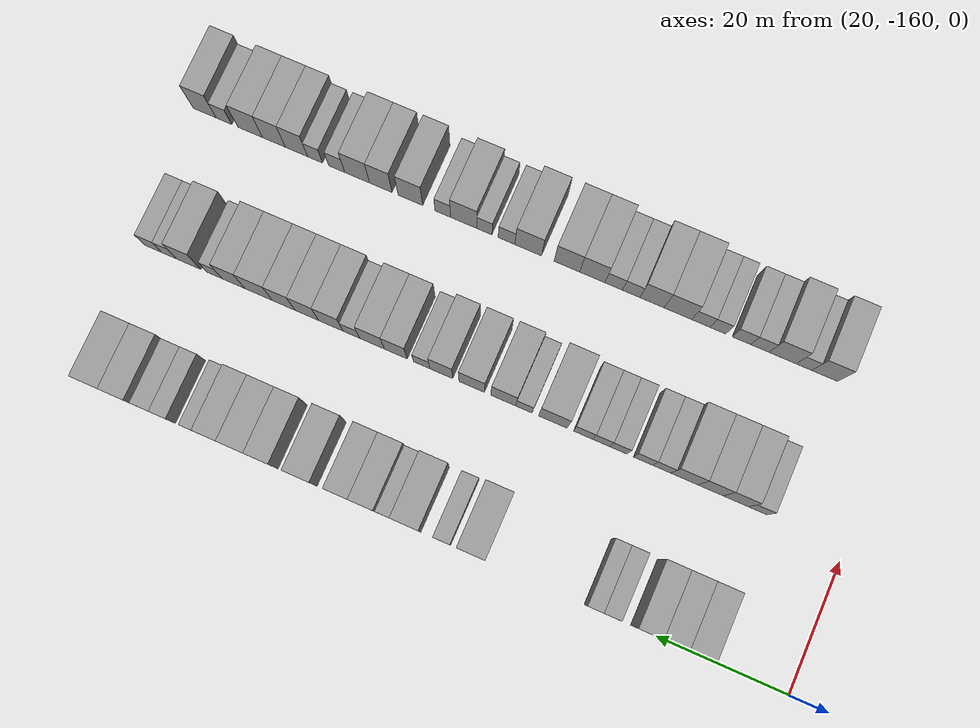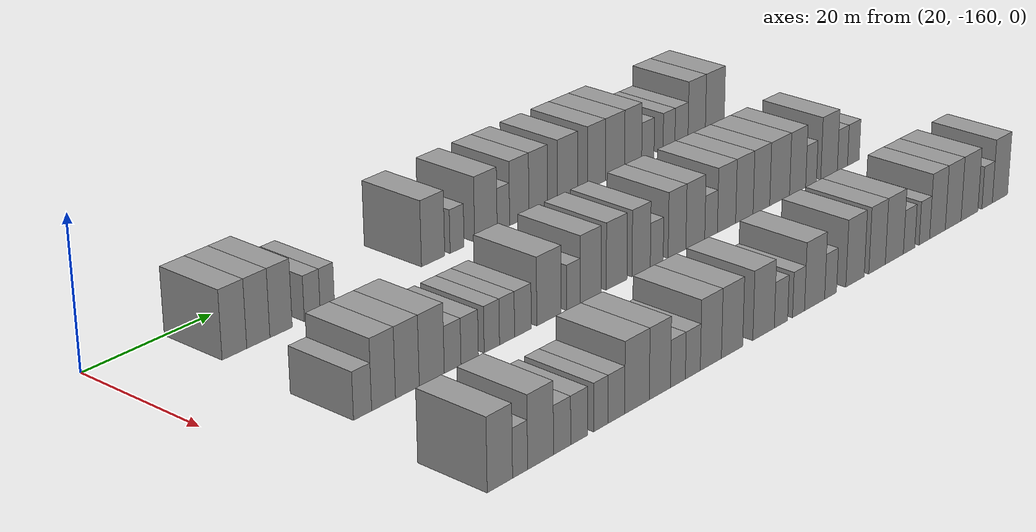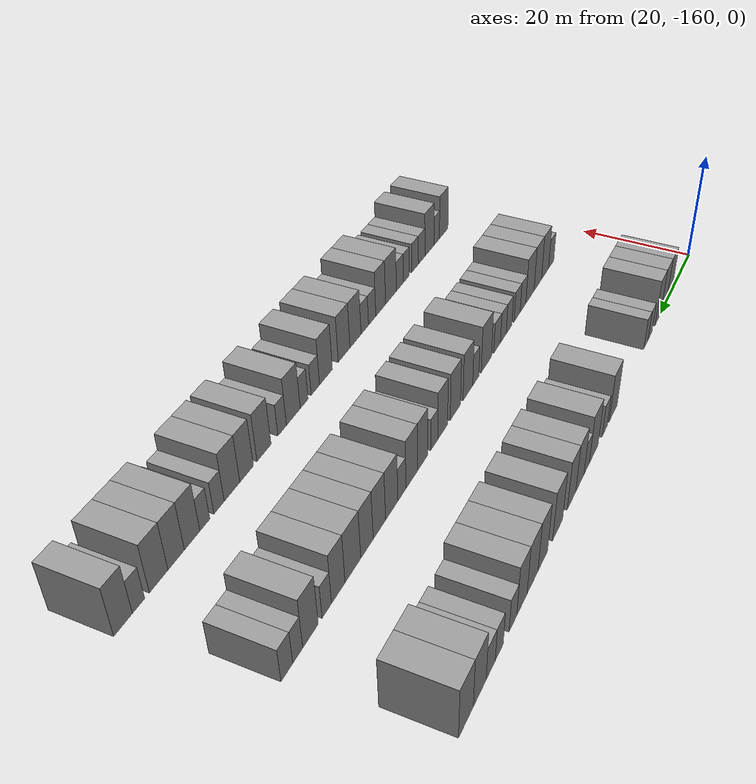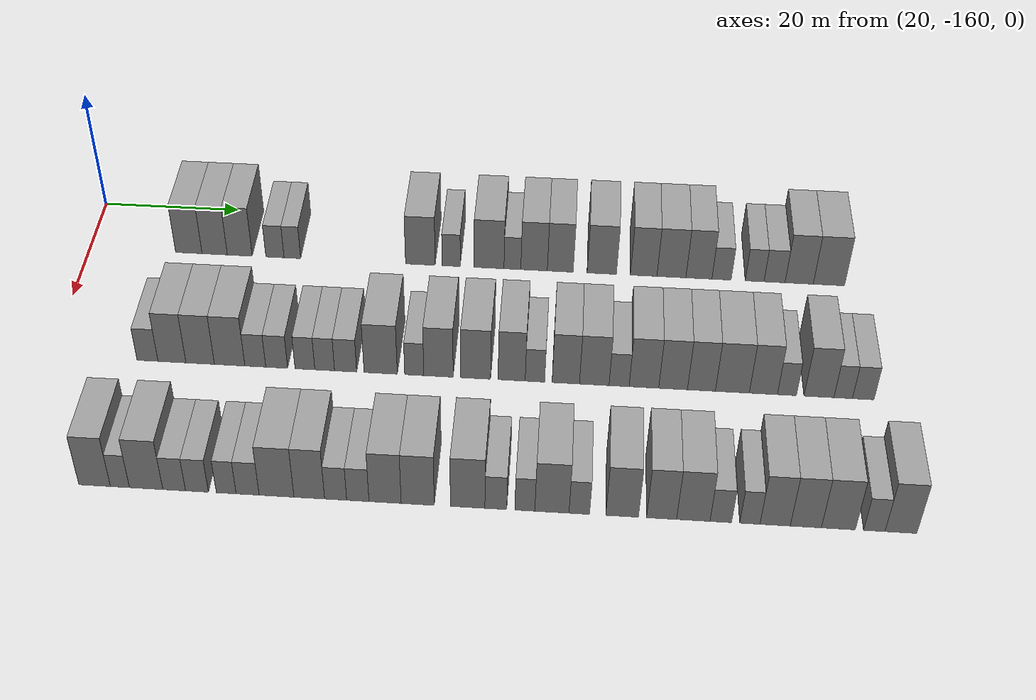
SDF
<sdf version="1.6">
 <world name="default">
  <model name="building_25">
   <static>1</static>
   <pose>25.0000 -145.4583 0 0.000000 0.000000 0.000000</pose>
   <link name="link">
    <pose>0 0 4.50 0 0 0</pose>
    <collision name="collision"><geometry><box><size>10.0000 3.8874 9.0000</size></box></geometry></collision>
    <visual name="visual">
     <cast_shadows>0</cast_shadows>
     <geometry><box><size>10.0000 3.8874 9.0000</size></box></geometry>
     <material>
      <script>
       <uri>model://grey_wall/materials/scripts</uri>
       <uri>model://grey_wall/materials/textures</uri>
       <name>vrc/grey_wall</name>
      </script>
     </material>
    </visual>
   </link>
  </model>
  <model name="building_26">
   <static>1</static>
   <pose>25.0000 -141.6594 0 0.000000 0.000000 0.000000</pose>
   <link name="link">
    <pose>0 0 4.50 0 0 0</pose>
    <collision name="collision"><geometry><box><size>10.0000 3.7105 9.0000</size></box></geometry></collision>
    <visual name="visual">
     <cast_shadows>0</cast_shadows>
     <geometry><box><size>10.0000 3.7105 9.0000</size></box></geometry>
     <material>
      <script>
       <uri>model://grey_wall/materials/scripts</uri>
       <uri>model://grey_wall/materials/textures</uri>
       <name>vrc/grey_wall</name>
      </script>
     </material>
    </visual>
   </link>
  </model>
  <model name="building_27">
   <static>1</static>
   <pose>25.0000 -137.9797 0 0.000000 0.000000 0.000000</pose>
   <link name="link">
    <pose>0 0 4.50 0 0 0</pose>
    <collision name="collision"><geometry><box><size>10.0000 3.6488 9.0000</size></box></geometry></collision>
    <visual name="visual">
     <cast_shadows>0</cast_shadows>
     <geometry><box><size>10.0000 3.6488 9.0000</size></box></geometry>
     <material>
      <script>
       <uri>model://grey_wall/materials/scripts</uri>
       <uri>model://grey_wall/materials/textures</uri>
       <name>vrc/grey_wall</name>
      </script>
     </material>
    </visual>
   </link>
  </model>
  <model name="building_28">
   <static>1</static>
   <pose>25.0000 -132.8272 0 0.000000 0.000000 0.000000</pose>
   <link name="link">
    <pose>0 0 3.00 0 0 0</pose>
    <collision name="collision"><geometry><box><size>10.0000 2.6561 6.0000</size></box></geometry></collision>
    <visual name="visual">
     <cast_shadows>0</cast_shadows>
     <geometry><box><size>10.0000 2.6561 6.0000</size></box></geometry>
     <material>
      <script>
       <uri>model://grey_wall/materials/scripts</uri>
       <uri>model://grey_wall/materials/textures</uri>
       <name>vrc/grey_wall</name>
      </script>
     </material>
    </visual>
   </link>
  </model>
  <model name="building_29">
   <static>1</static>
   <pose>25.0000 -130.2861 0 0.000000 0.000000 0.000000</pose>
   <link name="link">
    <pose>0 0 3.00 0 0 0</pose>
    <collision name="collision"><geometry><box><size>10.0000 2.4261 6.0000</size></box></geometry></collision>
    <visual name="visual">
     <cast_shadows>0</cast_shadows>
     <geometry><box><size>10.0000 2.4261 6.0000</size></box></geometry>
     <material>
      <script>
       <uri>model://grey_wall/materials/scripts</uri>
       <uri>model://grey_wall/materials/textures</uri>
       <name>vrc/grey_wall</name>
      </script>
     </material>
    </visual>
   </link>
  </model>
  <model name="building_30">
   <static>1</static>
   <pose>25.0000 -111.6694 0 0.000000 0.000000 0.000000</pose>
   <link name="link">
    <pose>0 0 4.50 0 0 0</pose>
    <collision name="collision"><geometry><box><size>10.0000 4.2691 9.0000</size></box></geometry></collision>
    <visual name="visual">
     <cast_shadows>0</cast_shadows>
     <geometry><box><size>10.0000 4.2691 9.0000</size></box></geometry>
     <material>
      <script>
       <uri>model://grey_wall/materials/scripts</uri>
       <uri>model://grey_wall/materials/textures</uri>
       <name>vrc/grey_wall</name>
      </script>
     </material>
    </visual>
   </link>
  </model>
  <model name="building_31">
   <static>1</static>
   <pose>25.0000 -107.2250 0 0.000000 0.000000 0.000000</pose>
   <link name="link">
    <pose>0 0 3.00 0 0 0</pose>
    <collision name="collision"><geometry><box><size>10.0000 2.6196 6.0000</size></box></geometry></collision>
    <visual name="visual">
     <cast_shadows>0</cast_shadows>
     <geometry><box><size>10.0000 2.6196 6.0000</size></box></geometry>
     <material>
      <script>
       <uri>model://grey_wall/materials/scripts</uri>
       <uri>model://grey_wall/materials/textures</uri>
       <name>vrc/grey_wall</name>
      </script>
     </material>
    </visual>
   </link>
  </model>
  <model name="building_32">
   <static>1</static>
   <pose>25.0000 -101.7582 0 0.000000 0.000000 0.000000</pose>
   <link name="link">
    <pose>0 0 4.50 0 0 0</pose>
    <collision name="collision"><geometry><box><size>10.0000 4.3139 9.0000</size></box></geometry></collision>
    <visual name="visual">
     <cast_shadows>0</cast_shadows>
     <geometry><box><size>10.0000 4.3139 9.0000</size></box></geometry>
     <material>
      <script>
       <uri>model://grey_wall/materials/scripts</uri>
       <uri>model://grey_wall/materials/textures</uri>
       <name>vrc/grey_wall</name>
      </script>
     </material>
    </visual>
   </link>
  </model>
  <model name="building_33">
   <static>1</static>
   <pose>25.0000 -98.3903 0 0.000000 0.000000 0.000000</pose>
   <link name="link">
    <pose>0 0 3.00 0 0 0</pose>
    <collision name="collision"><geometry><box><size>10.0000 2.4220 6.0000</size></box></geometry></collision>
    <visual name="visual">
     <cast_shadows>0</cast_shadows>
     <geometry><box><size>10.0000 2.4220 6.0000</size></box></geometry>
     <material>
      <script>
       <uri>model://grey_wall/materials/scripts</uri>
       <uri>model://grey_wall/materials/textures</uri>
       <name>vrc/grey_wall</name>
      </script>
     </material>
    </visual>
   </link>
  </model>
  <model name="building_34">
   <static>1</static>
   <pose>25.0000 -95.2785 0 0.000000 0.000000 0.000000</pose>
   <link name="link">
    <pose>0 0 4.50 0 0 0</pose>
    <collision name="collision"><geometry><box><size>10.0000 3.8016 9.0000</size></box></geometry></collision>
    <visual name="visual">
     <cast_shadows>0</cast_shadows>
     <geometry><box><size>10.0000 3.8016 9.0000</size></box></geometry>
     <material>
      <script>
       <uri>model://grey_wall/materials/scripts</uri>
       <uri>model://grey_wall/materials/textures</uri>
       <name>vrc/grey_wall</name>
      </script>
     </material>
    </visual>
   </link>
  </model>
  <model name="building_35">
   <static>1</static>
   <pose>25.0000 -91.5232 0 0.000000 0.000000 0.000000</pose>
   <link name="link">
    <pose>0 0 4.50 0 0 0</pose>
    <collision name="collision"><geometry><box><size>10.0000 3.7090 9.0000</size></box></geometry></collision>
    <visual name="visual">
     <cast_shadows>0</cast_shadows>
     <geometry><box><size>10.0000 3.7090 9.0000</size></box></geometry>
     <material>
      <script>
       <uri>model://grey_wall/materials/scripts</uri>
       <uri>model://grey_wall/materials/textures</uri>
       <name>vrc/grey_wall</name>
      </script>
     </material>
    </visual>
   </link>
  </model>
  <model name="building_36">
   <static>1</static>
   <pose>25.0000 -85.5748 0 0.000000 0.000000 0.000000</pose>
   <link name="link">
    <pose>0 0 4.50 0 0 0</pose>
    <collision name="collision"><geometry><box><size>10.0000 4.1879 9.0000</size></box></geometry></collision>
    <visual name="visual">
     <cast_shadows>0</cast_shadows>
     <geometry><box><size>10.0000 4.1879 9.0000</size></box></geometry>
     <material>
      <script>
       <uri>model://grey_wall/materials/scripts</uri>
       <uri>model://grey_wall/materials/textures</uri>
       <name>vrc/grey_wall</name>
      </script>
     </material>
    </visual>
   </link>
  </model>
  <model name="building_37">
   <static>1</static>
   <pose>25.0000 -79.5906 0 0.000000 0.000000 0.000000</pose>
   <link name="link">
    <pose>0 0 4.50 0 0 0</pose>
    <collision name="collision"><geometry><box><size>10.0000 3.7804 9.0000</size></box></geometry></collision>
    <visual name="visual">
     <cast_shadows>0</cast_shadows>
     <geometry><box><size>10.0000 3.7804 9.0000</size></box></geometry>
     <material>
      <script>
       <uri>model://grey_wall/materials/scripts</uri>
       <uri>model://grey_wall/materials/textures</uri>
       <name>vrc/grey_wall</name>
      </script>
     </material>
    </visual>
   </link>
  </model>
  <model name="building_38">
   <static>1</static>
   <pose>25.0000 -75.6365 0 0.000000 0.000000 0.000000</pose>
   <link name="link">
    <pose>0 0 4.50 0 0 0</pose>
    <collision name="collision"><geometry><box><size>10.0000 4.1280 9.0000</size></box></geometry></collision>
    <visual name="visual">
     <cast_shadows>0</cast_shadows>
     <geometry><box><size>10.0000 4.1280 9.0000</size></box></geometry>
     <material>
      <script>
       <uri>model://grey_wall/materials/scripts</uri>
       <uri>model://grey_wall/materials/textures</uri>
       <name>vrc/grey_wall</name>
      </script>
     </material>
    </visual>
   </link>
  </model>
  <model name="building_39">
   <static>1</static>
   <pose>25.0000 -71.7209 0 0.000000 0.000000 0.000000</pose>
   <link name="link">
    <pose>0 0 4.50 0 0 0</pose>
    <collision name="collision"><geometry><box><size>10.0000 3.7032 9.0000</size></box></geometry></collision>
    <visual name="visual">
     <cast_shadows>0</cast_shadows>
     <geometry><box><size>10.0000 3.7032 9.0000</size></box></geometry>
     <material>
      <script>
       <uri>model://grey_wall/materials/scripts</uri>
       <uri>model://grey_wall/materials/textures</uri>
       <name>vrc/grey_wall</name>
      </script>
     </material>
    </visual>
   </link>
  </model>
  <model name="building_40">
   <static>1</static>
   <pose>25.0000 -68.5074 0 0.000000 0.000000 0.000000</pose>
   <link name="link">
    <pose>0 0 3.00 0 0 0</pose>
    <collision name="collision"><geometry><box><size>10.0000 2.7237 6.0000</size></box></geometry></collision>
    <visual name="visual">
     <cast_shadows>0</cast_shadows>
     <geometry><box><size>10.0000 2.7237 6.0000</size></box></geometry>
     <material>
      <script>
       <uri>model://grey_wall/materials/scripts</uri>
       <uri>model://grey_wall/materials/textures</uri>
       <name>vrc/grey_wall</name>
      </script>
     </material>
    </visual>
   </link>
  </model>
  <model name="building_41">
   <static>1</static>
   <pose>25.0000 -63.8175 0 0.000000 0.000000 0.000000</pose>
   <link name="link">
    <pose>0 0 3.00 0 0 0</pose>
    <collision name="collision"><geometry><box><size>10.0000 2.6562 6.0000</size></box></geometry></collision>
    <visual name="visual">
     <cast_shadows>0</cast_shadows>
     <geometry><box><size>10.0000 2.6562 6.0000</size></box></geometry>
     <material>
      <script>
       <uri>model://grey_wall/materials/scripts</uri>
       <uri>model://grey_wall/materials/textures</uri>
       <name>vrc/grey_wall</name>
      </script>
     </material>
    </visual>
   </link>
  </model>
  <model name="building_42">
   <static>1</static>
   <pose>25.0000 -61.0045 0 0.000000 0.000000 0.000000</pose>
   <link name="link">
    <pose>0 0 3.00 0 0 0</pose>
    <collision name="collision"><geometry><box><size>10.0000 2.9698 6.0000</size></box></geometry></collision>
    <visual name="visual">
     <cast_shadows>0</cast_shadows>
     <geometry><box><size>10.0000 2.9698 6.0000</size></box></geometry>
     <material>
      <script>
       <uri>model://grey_wall/materials/scripts</uri>
       <uri>model://grey_wall/materials/textures</uri>
       <name>vrc/grey_wall</name>
      </script>
     </material>
    </visual>
   </link>
  </model>
  <model name="building_43">
   <static>1</static>
   <pose>25.0000 -57.5258 0 0.000000 0.000000 0.000000</pose>
   <link name="link">
    <pose>0 0 4.50 0 0 0</pose>
    <collision name="collision"><geometry><box><size>10.0000 3.9877 9.0000</size></box></geometry></collision>
    <visual name="visual">
     <cast_shadows>0</cast_shadows>
     <geometry><box><size>10.0000 3.9877 9.0000</size></box></geometry>
     <material>
      <script>
       <uri>model://grey_wall/materials/scripts</uri>
       <uri>model://grey_wall/materials/textures</uri>
       <name>vrc/grey_wall</name>
      </script>
     </material>
    </visual>
   </link>
  </model>
  <model name="building_44">
   <static>1</static>
   <pose>25.0000 -53.3298 0 0.000000 0.000000 0.000000</pose>
   <link name="link">
    <pose>0 0 4.50 0 0 0</pose>
    <collision name="collision"><geometry><box><size>10.0000 4.4043 9.0000</size></box></geometry></collision>
    <visual name="visual">
     <cast_shadows>0</cast_shadows>
     <geometry><box><size>10.0000 4.4043 9.0000</size></box></geometry>
     <material>
      <script>
       <uri>model://grey_wall/materials/scripts</uri>
       <uri>model://grey_wall/materials/textures</uri>
       <name>vrc/grey_wall</name>
      </script>
     </material>
    </visual>
   </link>
  </model>
  <model name="building_150">
   <static>1</static>
   <pose>47.0000 -146.6364 0 0.000000 0.000000 0.000000</pose>
   <link name="link">
    <pose>0 0 3.00 0 0 0</pose>
    <collision name="collision"><geometry><box><size>10.0000 2.8636 6.0000</size></box></geometry></collision>
    <visual name="visual">
     <cast_shadows>0</cast_shadows>
     <geometry><box><size>10.0000 2.8636 6.0000</size></box></geometry>
     <material>
      <script>
       <uri>model://grey_wall/materials/scripts</uri>
       <uri>model://grey_wall/materials/textures</uri>
       <name>vrc/grey_wall</name>
      </script>
     </material>
    </visual>
   </link>
  </model>
  <model name="building_151">
   <static>1</static>
   <pose>47.0000 -143.2948 0 0.000000 0.000000 0.000000</pose>
   <link name="link">
    <pose>0 0 4.50 0 0 0</pose>
    <collision name="collision"><geometry><box><size>10.0000 3.8197 9.0000</size></box></geometry></collision>
    <visual name="visual">
     <cast_shadows>0</cast_shadows>
     <geometry><box><size>10.0000 3.8197 9.0000</size></box></geometry>
     <material>
      <script>
       <uri>model://grey_wall/materials/scripts</uri>
       <uri>model://grey_wall/materials/textures</uri>
       <name>vrc/grey_wall</name>
      </script>
     </material>
    </visual>
   </link>
  </model>
  <model name="building_152">
   <static>1</static>
   <pose>47.0000 -139.4377 0 0.000000 0.000000 0.000000</pose>
   <link name="link">
    <pose>0 0 4.50 0 0 0</pose>
    <collision name="collision"><geometry><box><size>10.0000 3.8944 9.0000</size></box></geometry></collision>
    <visual name="visual">
     <cast_shadows>0</cast_shadows>
     <geometry><box><size>10.0000 3.8944 9.0000</size></box></geometry>
     <material>
      <script>
       <uri>model://grey_wall/materials/scripts</uri>
       <uri>model://grey_wall/materials/textures</uri>
       <name>vrc/grey_wall</name>
      </script>
     </material>
    </visual>
   </link>
  </model>
  <model name="building_153">
   <static>1</static>
   <pose>47.0000 -135.4099 0 0.000000 0.000000 0.000000</pose>
   <link name="link">
    <pose>0 0 4.50 0 0 0</pose>
    <collision name="collision"><geometry><box><size>10.0000 4.1613 9.0000</size></box></geometry></collision>
    <visual name="visual">
     <cast_shadows>0</cast_shadows>
     <geometry><box><size>10.0000 4.1613 9.0000</size></box></geometry>
     <material>
      <script>
       <uri>model://grey_wall/materials/scripts</uri>
       <uri>model://grey_wall/materials/textures</uri>
       <name>vrc/grey_wall</name>
      </script>
     </material>
    </visual>
   </link>
  </model>
  <model name="building_154">
   <static>1</static>
   <pose>47.0000 -131.9122 0 0.000000 0.000000 0.000000</pose>
   <link name="link">
    <pose>0 0 3.00 0 0 0</pose>
    <collision name="collision"><geometry><box><size>10.0000 2.8342 6.0000</size></box></geometry></collision>
    <visual name="visual">
     <cast_shadows>0</cast_shadows>
     <geometry><box><size>10.0000 2.8342 6.0000</size></box></geometry>
     <material>
      <script>
       <uri>model://grey_wall/materials/scripts</uri>
       <uri>model://grey_wall/materials/textures</uri>
       <name>vrc/grey_wall</name>
      </script>
     </material>
    </visual>
   </link>
  </model>
  <model name="building_155">
   <static>1</static>
   <pose>47.0000 -129.0062 0 0.000000 0.000000 0.000000</pose>
   <link name="link">
    <pose>0 0 3.00 0 0 0</pose>
    <collision name="collision"><geometry><box><size>10.0000 2.9776 6.0000</size></box></geometry></collision>
    <visual name="visual">
     <cast_shadows>0</cast_shadows>
     <geometry><box><size>10.0000 2.9776 6.0000</size></box></geometry>
     <material>
      <script>
       <uri>model://grey_wall/materials/scripts</uri>
       <uri>model://grey_wall/materials/textures</uri>
       <name>vrc/grey_wall</name>
      </script>
     </material>
    </visual>
   </link>
  </model>
  <model name="building_156">
   <static>1</static>
   <pose>47.0000 -125.1750 0 0.000000 0.000000 0.000000</pose>
   <link name="link">
    <pose>0 0 3.00 0 0 0</pose>
    <collision name="collision"><geometry><box><size>10.0000 2.6848 6.0000</size></box></geometry></collision>
    <visual name="visual">
     <cast_shadows>0</cast_shadows>
     <geometry><box><size>10.0000 2.6848 6.0000</size></box></geometry>
     <material>
      <script>
       <uri>model://grey_wall/materials/scripts</uri>
       <uri>model://grey_wall/materials/textures</uri>
       <name>vrc/grey_wall</name>
      </script>
     </material>
    </visual>
   </link>
  </model>
  <model name="building_157">
   <static>1</static>
   <pose>47.0000 -122.4982 0 0.000000 0.000000 0.000000</pose>
   <link name="link">
    <pose>0 0 3.00 0 0 0</pose>
    <collision name="collision"><geometry><box><size>10.0000 2.6690 6.0000</size></box></geometry></collision>
    <visual name="visual">
     <cast_shadows>0</cast_shadows>
     <geometry><box><size>10.0000 2.6690 6.0000</size></box></geometry>
     <material>
      <script>
       <uri>model://grey_wall/materials/scripts</uri>
       <uri>model://grey_wall/materials/textures</uri>
       <name>vrc/grey_wall</name>
      </script>
     </material>
    </visual>
   </link>
  </model>
  <model name="building_158">
   <static>1</static>
   <pose>47.0000 -119.6649 0 0.000000 0.000000 0.000000</pose>
   <link name="link">
    <pose>0 0 3.00 0 0 0</pose>
    <collision name="collision"><geometry><box><size>10.0000 2.9975 6.0000</size></box></geometry></collision>
    <visual name="visual">
     <cast_shadows>0</cast_shadows>
     <geometry><box><size>10.0000 2.9975 6.0000</size></box></geometry>
     <material>
      <script>
       <uri>model://grey_wall/materials/scripts</uri>
       <uri>model://grey_wall/materials/textures</uri>
       <name>vrc/grey_wall</name>
      </script>
     </material>
    </visual>
   </link>
  </model>
  <model name="building_159">
   <static>1</static>
   <pose>47.0000 -114.9239 0 0.000000 0.000000 0.000000</pose>
   <link name="link">
    <pose>0 0 4.50 0 0 0</pose>
    <collision name="collision"><geometry><box><size>10.0000 4.4846 9.0000</size></box></geometry></collision>
    <visual name="visual">
     <cast_shadows>0</cast_shadows>
     <geometry><box><size>10.0000 4.4846 9.0000</size></box></geometry>
     <material>
      <script>
       <uri>model://grey_wall/materials/scripts</uri>
       <uri>model://grey_wall/materials/textures</uri>
       <name>vrc/grey_wall</name>
      </script>
     </material>
    </visual>
   </link>
  </model>
  <model name="building_160">
   <static>1</static>
   <pose>47.0000 -110.3972 0 0.000000 0.000000 0.000000</pose>
   <link name="link">
    <pose>0 0 3.00 0 0 0</pose>
    <collision name="collision"><geometry><box><size>10.0000 2.5687 6.0000</size></box></geometry></collision>
    <visual name="visual">
     <cast_shadows>0</cast_shadows>
     <geometry><box><size>10.0000 2.5687 6.0000</size></box></geometry>
     <material>
      <script>
       <uri>model://grey_wall/materials/scripts</uri>
       <uri>model://grey_wall/materials/textures</uri>
       <name>vrc/grey_wall</name>
      </script>
     </material>
    </visual>
   </link>
  </model>
  <model name="building_161">
   <static>1</static>
   <pose>47.0000 -107.1453 0 0.000000 0.000000 0.000000</pose>
   <link name="link">
    <pose>0 0 4.50 0 0 0</pose>
    <collision name="collision"><geometry><box><size>10.0000 3.9351 9.0000</size></box></geometry></collision>
    <visual name="visual">
     <cast_shadows>0</cast_shadows>
     <geometry><box><size>10.0000 3.9351 9.0000</size></box></geometry>
     <material>
      <script>
       <uri>model://grey_wall/materials/scripts</uri>
       <uri>model://grey_wall/materials/textures</uri>
       <name>vrc/grey_wall</name>
      </script>
     </material>
    </visual>
   </link>
  </model>
  <model name="building_162">
   <static>1</static>
   <pose>47.0000 -102.1686 0 0.000000 0.000000 0.000000</pose>
   <link name="link">
    <pose>0 0 4.50 0 0 0</pose>
    <collision name="collision"><geometry><box><size>10.0000 4.0183 9.0000</size></box></geometry></collision>
    <visual name="visual">
     <cast_shadows>0</cast_shadows>
     <geometry><box><size>10.0000 4.0183 9.0000</size></box></geometry>
     <material>
      <script>
       <uri>model://grey_wall/materials/scripts</uri>
       <uri>model://grey_wall/materials/textures</uri>
       <name>vrc/grey_wall</name>
      </script>
     </material>
    </visual>
   </link>
  </model>
  <model name="building_163">
   <static>1</static>
   <pose>47.0000 -97.3427 0 0.000000 0.000000 0.000000</pose>
   <link name="link">
    <pose>0 0 4.50 0 0 0</pose>
    <collision name="collision"><geometry><box><size>10.0000 3.6336 9.0000</size></box></geometry></collision>
    <visual name="visual">
     <cast_shadows>0</cast_shadows>
     <geometry><box><size>10.0000 3.6336 9.0000</size></box></geometry>
     <material>
      <script>
       <uri>model://grey_wall/materials/scripts</uri>
       <uri>model://grey_wall/materials/textures</uri>
       <name>vrc/grey_wall</name>
      </script>
     </material>
    </visual>
   </link>
  </model>
  <model name="building_164">
   <static>1</static>
   <pose>47.0000 -94.2293 0 0.000000 0.000000 0.000000</pose>
   <link name="link">
    <pose>0 0 3.00 0 0 0</pose>
    <collision name="collision"><geometry><box><size>10.0000 2.5932 6.0000</size></box></geometry></collision>
    <visual name="visual">
     <cast_shadows>0</cast_shadows>
     <geometry><box><size>10.0000 2.5932 6.0000</size></box></geometry>
     <material>
      <script>
       <uri>model://grey_wall/materials/scripts</uri>
       <uri>model://grey_wall/materials/textures</uri>
       <name>vrc/grey_wall</name>
      </script>
     </material>
    </visual>
   </link>
  </model>
  <model name="building_165">
   <static>1</static>
   <pose>47.0000 -90.1132 0 0.000000 0.000000 0.000000</pose>
   <link name="link">
    <pose>0 0 4.50 0 0 0</pose>
    <collision name="collision"><geometry><box><size>10.0000 3.6390 9.0000</size></box></geometry></collision>
    <visual name="visual">
     <cast_shadows>0</cast_shadows>
     <geometry><box><size>10.0000 3.6390 9.0000</size></box></geometry>
     <material>
      <script>
       <uri>model://grey_wall/materials/scripts</uri>
       <uri>model://grey_wall/materials/textures</uri>
       <name>vrc/grey_wall</name>
      </script>
     </material>
    </visual>
   </link>
  </model>
  <model name="building_166">
   <static>1</static>
   <pose>47.0000 -86.3264 0 0.000000 0.000000 0.000000</pose>
   <link name="link">
    <pose>0 0 4.50 0 0 0</pose>
    <collision name="collision"><geometry><box><size>10.0000 3.9347 9.0000</size></box></geometry></collision>
    <visual name="visual">
     <cast_shadows>0</cast_shadows>
     <geometry><box><size>10.0000 3.9347 9.0000</size></box></geometry>
     <material>
      <script>
       <uri>model://grey_wall/materials/scripts</uri>
       <uri>model://grey_wall/materials/textures</uri>
       <name>vrc/grey_wall</name>
      </script>
     </material>
    </visual>
   </link>
  </model>
  <model name="building_167">
   <static>1</static>
   <pose>47.0000 -83.0260 0 0.000000 0.000000 0.000000</pose>
   <link name="link">
    <pose>0 0 3.00 0 0 0</pose>
    <collision name="collision"><geometry><box><size>10.0000 2.6661 6.0000</size></box></geometry></collision>
    <visual name="visual">
     <cast_shadows>0</cast_shadows>
     <geometry><box><size>10.0000 2.6661 6.0000</size></box></geometry>
     <material>
      <script>
       <uri>model://grey_wall/materials/scripts</uri>
       <uri>model://grey_wall/materials/textures</uri>
       <name>vrc/grey_wall</name>
      </script>
     </material>
    </visual>
   </link>
  </model>
  <model name="building_168">
   <static>1</static>
   <pose>47.0000 -79.7313 0 0.000000 0.000000 0.000000</pose>
   <link name="link">
    <pose>0 0 4.50 0 0 0</pose>
    <collision name="collision"><geometry><box><size>10.0000 3.9233 9.0000</size></box></geometry></collision>
    <visual name="visual">
     <cast_shadows>0</cast_shadows>
     <geometry><box><size>10.0000 3.9233 9.0000</size></box></geometry>
     <material>
      <script>
       <uri>model://grey_wall/materials/scripts</uri>
       <uri>model://grey_wall/materials/textures</uri>
       <name>vrc/grey_wall</name>
      </script>
     </material>
    </visual>
   </link>
  </model>
  <model name="building_169">
   <static>1</static>
   <pose>47.0000 -75.8708 0 0.000000 0.000000 0.000000</pose>
   <link name="link">
    <pose>0 0 4.50 0 0 0</pose>
    <collision name="collision"><geometry><box><size>10.0000 3.7977 9.0000</size></box></geometry></collision>
    <visual name="visual">
     <cast_shadows>0</cast_shadows>
     <geometry><box><size>10.0000 3.7977 9.0000</size></box></geometry>
     <material>
      <script>
       <uri>model://grey_wall/materials/scripts</uri>
       <uri>model://grey_wall/materials/textures</uri>
       <name>vrc/grey_wall</name>
      </script>
     </material>
    </visual>
   </link>
  </model>
  <model name="building_170">
   <static>1</static>
   <pose>47.0000 -72.1267 0 0.000000 0.000000 0.000000</pose>
   <link name="link">
    <pose>0 0 4.50 0 0 0</pose>
    <collision name="collision"><geometry><box><size>10.0000 3.6904 9.0000</size></box></geometry></collision>
    <visual name="visual">
     <cast_shadows>0</cast_shadows>
     <geometry><box><size>10.0000 3.6904 9.0000</size></box></geometry>
     <material>
      <script>
       <uri>model://grey_wall/materials/scripts</uri>
       <uri>model://grey_wall/materials/textures</uri>
       <name>vrc/grey_wall</name>
      </script>
     </material>
    </visual>
   </link>
  </model>
  <model name="building_171">
   <static>1</static>
   <pose>47.0000 -68.0451 0 0.000000 0.000000 0.000000</pose>
   <link name="link">
    <pose>0 0 4.50 0 0 0</pose>
    <collision name="collision"><geometry><box><size>10.0000 4.4730 9.0000</size></box></geometry></collision>
    <visual name="visual">
     <cast_shadows>0</cast_shadows>
     <geometry><box><size>10.0000 4.4730 9.0000</size></box></geometry>
     <material>
      <script>
       <uri>model://grey_wall/materials/scripts</uri>
       <uri>model://grey_wall/materials/textures</uri>
       <name>vrc/grey_wall</name>
      </script>
     </material>
    </visual>
   </link>
  </model>
  <model name="building_172">
   <static>1</static>
   <pose>47.0000 -63.9631 0 0.000000 0.000000 0.000000</pose>
   <link name="link">
    <pose>0 0 4.50 0 0 0</pose>
    <collision name="collision"><geometry><box><size>10.0000 3.6911 9.0000</size></box></geometry></collision>
    <visual name="visual">
     <cast_shadows>0</cast_shadows>
     <geometry><box><size>10.0000 3.6911 9.0000</size></box></geometry>
     <material>
      <script>
       <uri>model://grey_wall/materials/scripts</uri>
       <uri>model://grey_wall/materials/textures</uri>
       <name>vrc/grey_wall</name>
      </script>
     </material>
    </visual>
   </link>
  </model>
  <model name="building_173">
   <static>1</static>
   <pose>47.0000 -60.8670 0 0.000000 0.000000 0.000000</pose>
   <link name="link">
    <pose>0 0 3.00 0 0 0</pose>
    <collision name="collision"><geometry><box><size>10.0000 2.5010 6.0000</size></box></geometry></collision>
    <visual name="visual">
     <cast_shadows>0</cast_shadows>
     <geometry><box><size>10.0000 2.5010 6.0000</size></box></geometry>
     <material>
      <script>
       <uri>model://grey_wall/materials/scripts</uri>
       <uri>model://grey_wall/materials/textures</uri>
       <name>vrc/grey_wall</name>
      </script>
     </material>
    </visual>
   </link>
  </model>
  <model name="building_174">
   <static>1</static>
   <pose>47.0000 -56.6576 0 0.000000 0.000000 0.000000</pose>
   <link name="link">
    <pose>0 0 4.50 0 0 0</pose>
    <collision name="collision"><geometry><box><size>10.0000 3.9178 9.0000</size></box></geometry></collision>
    <visual name="visual">
     <cast_shadows>0</cast_shadows>
     <geometry><box><size>10.0000 3.9178 9.0000</size></box></geometry>
     <material>
      <script>
       <uri>model://grey_wall/materials/scripts</uri>
       <uri>model://grey_wall/materials/textures</uri>
       <name>vrc/grey_wall</name>
      </script>
     </material>
    </visual>
   </link>
  </model>
  <model name="building_175">
   <static>1</static>
   <pose>47.0000 -53.4836 0 0.000000 0.000000 0.000000</pose>
   <link name="link">
    <pose>0 0 3.00 0 0 0</pose>
    <collision name="collision"><geometry><box><size>10.0000 2.4301 6.0000</size></box></geometry></collision>
    <visual name="visual">
     <cast_shadows>0</cast_shadows>
     <geometry><box><size>10.0000 2.4301 6.0000</size></box></geometry>
     <material>
      <script>
       <uri>model://grey_wall/materials/scripts</uri>
       <uri>model://grey_wall/materials/textures</uri>
       <name>vrc/grey_wall</name>
      </script>
     </material>
    </visual>
   </link>
  </model>
  <model name="building_176">
   <static>1</static>
   <pose>47.0000 -50.8627 0 0.000000 0.000000 0.000000</pose>
   <link name="link">
    <pose>0 0 3.00 0 0 0</pose>
    <collision name="collision"><geometry><box><size>10.0000 2.8116 6.0000</size></box></geometry></collision>
    <visual name="visual">
     <cast_shadows>0</cast_shadows>
     <geometry><box><size>10.0000 2.8116 6.0000</size></box></geometry>
     <material>
      <script>
       <uri>model://grey_wall/materials/scripts</uri>
       <uri>model://grey_wall/materials/textures</uri>
       <name>vrc/grey_wall</name>
      </script>
     </material>
    </visual>
   </link>
  </model>
  <model name="building_280">
   <static>1</static>
   <pose>69.0000 -148.4467 0 0.000000 0.000000 0.000000</pose>
   <link name="link">
    <pose>0 0 4.50 0 0 0</pose>
    <collision name="collision"><geometry><box><size>10.0000 4.0081 9.0000</size></box></geometry></collision>
    <visual name="visual">
     <cast_shadows>0</cast_shadows>
     <geometry><box><size>10.0000 4.0081 9.0000</size></box></geometry>
     <material>
      <script>
       <uri>model://grey_wall/materials/scripts</uri>
       <uri>model://grey_wall/materials/textures</uri>
       <name>vrc/grey_wall</name>
      </script>
     </material>
    </visual>
   </link>
  </model>
  <model name="building_281">
   <static>1</static>
   <pose>69.0000 -145.2342 0 0.000000 0.000000 0.000000</pose>
   <link name="link">
    <pose>0 0 3.00 0 0 0</pose>
    <collision name="collision"><geometry><box><size>10.0000 2.4169 6.0000</size></box></geometry></collision>
    <visual name="visual">
     <cast_shadows>0</cast_shadows>
     <geometry><box><size>10.0000 2.4169 6.0000</size></box></geometry>
     <material>
      <script>
       <uri>model://grey_wall/materials/scripts</uri>
       <uri>model://grey_wall/materials/textures</uri>
       <name>vrc/grey_wall</name>
      </script>
     </material>
    </visual>
   </link>
  </model>
  <model name="building_282">
   <static>1</static>
   <pose>69.0000 -141.9087 0 0.000000 0.000000 0.000000</pose>
   <link name="link">
    <pose>0 0 4.50 0 0 0</pose>
    <collision name="collision"><geometry><box><size>10.0000 4.2341 9.0000</size></box></geometry></collision>
    <visual name="visual">
     <cast_shadows>0</cast_shadows>
     <geometry><box><size>10.0000 4.2341 9.0000</size></box></geometry>
     <material>
      <script>
       <uri>model://grey_wall/materials/scripts</uri>
       <uri>model://grey_wall/materials/textures</uri>
       <name>vrc/grey_wall</name>
      </script>
     </material>
    </visual>
   </link>
  </model>
  <model name="building_283">
   <static>1</static>
   <pose>69.0000 -138.3596 0 0.000000 0.000000 0.000000</pose>
   <link name="link">
    <pose>0 0 3.00 0 0 0</pose>
    <collision name="collision"><geometry><box><size>10.0000 2.8641 6.0000</size></box></geometry></collision>
    <visual name="visual">
     <cast_shadows>0</cast_shadows>
     <geometry><box><size>10.0000 2.8641 6.0000</size></box></geometry>
     <material>
      <script>
       <uri>model://grey_wall/materials/scripts</uri>
       <uri>model://grey_wall/materials/textures</uri>
       <name>vrc/grey_wall</name>
      </script>
     </material>
    </visual>
   </link>
  </model>
  <model name="building_284">
   <static>1</static>
   <pose>69.0000 -135.4821 0 0.000000 0.000000 0.000000</pose>
   <link name="link">
    <pose>0 0 3.00 0 0 0</pose>
    <collision name="collision"><geometry><box><size>10.0000 2.8909 6.0000</size></box></geometry></collision>
    <visual name="visual">
     <cast_shadows>0</cast_shadows>
     <geometry><box><size>10.0000 2.8909 6.0000</size></box></geometry>
     <material>
      <script>
       <uri>model://grey_wall/materials/scripts</uri>
       <uri>model://grey_wall/materials/textures</uri>
       <name>vrc/grey_wall</name>
      </script>
     </material>
    </visual>
   </link>
  </model>
  <model name="building_285">
   <static>1</static>
   <pose>69.0000 -131.7908 0 0.000000 0.000000 0.000000</pose>
   <link name="link">
    <pose>0 0 3.00 0 0 0</pose>
    <collision name="collision"><geometry><box><size>10.0000 2.4917 6.0000</size></box></geometry></collision>
    <visual name="visual">
     <cast_shadows>0</cast_shadows>
     <geometry><box><size>10.0000 2.4917 6.0000</size></box></geometry>
     <material>
      <script>
       <uri>model://grey_wall/materials/scripts</uri>
       <uri>model://grey_wall/materials/textures</uri>
       <name>vrc/grey_wall</name>
      </script>
     </material>
    </visual>
   </link>
  </model>
  <model name="building_286">
   <static>1</static>
   <pose>69.0000 -129.0964 0 0.000000 0.000000 0.000000</pose>
   <link name="link">
    <pose>0 0 3.00 0 0 0</pose>
    <collision name="collision"><geometry><box><size>10.0000 2.8971 6.0000</size></box></geometry></collision>
    <visual name="visual">
     <cast_shadows>0</cast_shadows>
     <geometry><box><size>10.0000 2.8971 6.0000</size></box></geometry>
     <material>
      <script>
       <uri>model://grey_wall/materials/scripts</uri>
       <uri>model://grey_wall/materials/textures</uri>
       <name>vrc/grey_wall</name>
      </script>
     </material>
    </visual>
   </link>
  </model>
  <model name="building_287">
   <static>1</static>
   <pose>69.0000 -125.4621 0 0.000000 0.000000 0.000000</pose>
   <link name="link">
    <pose>0 0 4.50 0 0 0</pose>
    <collision name="collision"><geometry><box><size>10.0000 4.3713 9.0000</size></box></geometry></collision>
    <visual name="visual">
     <cast_shadows>0</cast_shadows>
     <geometry><box><size>10.0000 4.3713 9.0000</size></box></geometry>
     <material>
      <script>
       <uri>model://grey_wall/materials/scripts</uri>
       <uri>model://grey_wall/materials/textures</uri>
       <name>vrc/grey_wall</name>
      </script>
     </material>
    </visual>
   </link>
  </model>
  <model name="building_288">
   <static>1</static>
   <pose>69.0000 -121.3544 0 0.000000 0.000000 0.000000</pose>
   <link name="link">
    <pose>0 0 4.50 0 0 0</pose>
    <collision name="collision"><geometry><box><size>10.0000 3.8441 9.0000</size></box></geometry></collision>
    <visual name="visual">
     <cast_shadows>0</cast_shadows>
     <geometry><box><size>10.0000 3.8441 9.0000</size></box></geometry>
     <material>
      <script>
       <uri>model://grey_wall/materials/scripts</uri>
       <uri>model://grey_wall/materials/textures</uri>
       <name>vrc/grey_wall</name>
      </script>
     </material>
    </visual>
   </link>
  </model>
  <model name="building_289">
   <static>1</static>
   <pose>69.0000 -118.0551 0 0.000000 0.000000 0.000000</pose>
   <link name="link">
    <pose>0 0 3.00 0 0 0</pose>
    <collision name="collision"><geometry><box><size>10.0000 2.7546 6.0000</size></box></geometry></collision>
    <visual name="visual">
     <cast_shadows>0</cast_shadows>
     <geometry><box><size>10.0000 2.7546 6.0000</size></box></geometry>
     <material>
      <script>
       <uri>model://grey_wall/materials/scripts</uri>
       <uri>model://grey_wall/materials/textures</uri>
       <name>vrc/grey_wall</name>
      </script>
     </material>
    </visual>
   </link>
  </model>
  <model name="building_290">
   <static>1</static>
   <pose>69.0000 -115.2849 0 0.000000 0.000000 0.000000</pose>
   <link name="link">
    <pose>0 0 3.00 0 0 0</pose>
    <collision name="collision"><geometry><box><size>10.0000 2.7859 6.0000</size></box></geometry></collision>
    <visual name="visual">
     <cast_shadows>0</cast_shadows>
     <geometry><box><size>10.0000 2.7859 6.0000</size></box></geometry>
     <material>
      <script>
       <uri>model://grey_wall/materials/scripts</uri>
       <uri>model://grey_wall/materials/textures</uri>
       <name>vrc/grey_wall</name>
      </script>
     </material>
    </visual>
   </link>
  </model>
  <model name="building_291">
   <static>1</static>
   <pose>69.0000 -111.8842 0 0.000000 0.000000 0.000000</pose>
   <link name="link">
    <pose>0 0 4.50 0 0 0</pose>
    <collision name="collision"><geometry><box><size>10.0000 4.0155 9.0000</size></box></geometry></collision>
    <visual name="visual">
     <cast_shadows>0</cast_shadows>
     <geometry><box><size>10.0000 4.0155 9.0000</size></box></geometry>
     <material>
      <script>
       <uri>model://grey_wall/materials/scripts</uri>
       <uri>model://grey_wall/materials/textures</uri>
       <name>vrc/grey_wall</name>
      </script>
     </material>
    </visual>
   </link>
  </model>
  <model name="building_292">
   <static>1</static>
   <pose>69.0000 -107.8208 0 0.000000 0.000000 0.000000</pose>
   <link name="link">
    <pose>0 0 4.50 0 0 0</pose>
    <collision name="collision"><geometry><box><size>10.0000 4.1114 9.0000</size></box></geometry></collision>
    <visual name="visual">
     <cast_shadows>0</cast_shadows>
     <geometry><box><size>10.0000 4.1114 9.0000</size></box></geometry>
     <material>
      <script>
       <uri>model://grey_wall/materials/scripts</uri>
       <uri>model://grey_wall/materials/textures</uri>
       <name>vrc/grey_wall</name>
      </script>
     </material>
    </visual>
   </link>
  </model>
  <model name="building_293">
   <static>1</static>
   <pose>69.0000 -101.6268 0 0.000000 0.000000 0.000000</pose>
   <link name="link">
    <pose>0 0 4.50 0 0 0</pose>
    <collision name="collision"><geometry><box><size>10.0000 4.2766 9.0000</size></box></geometry></collision>
    <visual name="visual">
     <cast_shadows>0</cast_shadows>
     <geometry><box><size>10.0000 4.2766 9.0000</size></box></geometry>
     <material>
      <script>
       <uri>model://grey_wall/materials/scripts</uri>
       <uri>model://grey_wall/materials/textures</uri>
       <name>vrc/grey_wall</name>
      </script>
     </material>
    </visual>
   </link>
  </model>
  <model name="building_294">
   <static>1</static>
   <pose>69.0000 -98.1366 0 0.000000 0.000000 0.000000</pose>
   <link name="link">
    <pose>0 0 3.00 0 0 0</pose>
    <collision name="collision"><geometry><box><size>10.0000 2.7037 6.0000</size></box></geometry></collision>
    <visual name="visual">
     <cast_shadows>0</cast_shadows>
     <geometry><box><size>10.0000 2.7037 6.0000</size></box></geometry>
     <material>
      <script>
       <uri>model://grey_wall/materials/scripts</uri>
       <uri>model://grey_wall/materials/textures</uri>
       <name>vrc/grey_wall</name>
      </script>
     </material>
    </visual>
   </link>
  </model>
  <model name="building_295">
   <static>1</static>
   <pose>69.0000 -94.5510 0 0.000000 0.000000 0.000000</pose>
   <link name="link">
    <pose>0 0 3.00 0 0 0</pose>
    <collision name="collision"><geometry><box><size>10.0000 2.4675 6.0000</size></box></geometry></collision>
    <visual name="visual">
     <cast_shadows>0</cast_shadows>
     <geometry><box><size>10.0000 2.4675 6.0000</size></box></geometry>
     <material>
      <script>
       <uri>model://grey_wall/materials/scripts</uri>
       <uri>model://grey_wall/materials/textures</uri>
       <name>vrc/grey_wall</name>
      </script>
     </material>
    </visual>
   </link>
  </model>
  <model name="building_296">
   <static>1</static>
   <pose>69.0000 -91.2119 0 0.000000 0.000000 0.000000</pose>
   <link name="link">
    <pose>0 0 4.50 0 0 0</pose>
    <collision name="collision"><geometry><box><size>10.0000 4.2108 9.0000</size></box></geometry></collision>
    <visual name="visual">
     <cast_shadows>0</cast_shadows>
     <geometry><box><size>10.0000 4.2108 9.0000</size></box></geometry>
     <material>
      <script>
       <uri>model://grey_wall/materials/scripts</uri>
       <uri>model://grey_wall/materials/textures</uri>
       <name>vrc/grey_wall</name>
      </script>
     </material>
    </visual>
   </link>
  </model>
  <model name="building_297">
   <static>1</static>
   <pose>69.0000 -87.8429 0 0.000000 0.000000 0.000000</pose>
   <link name="link">
    <pose>0 0 3.00 0 0 0</pose>
    <collision name="collision"><geometry><box><size>10.0000 2.5271 6.0000</size></box></geometry></collision>
    <visual name="visual">
     <cast_shadows>0</cast_shadows>
     <geometry><box><size>10.0000 2.5271 6.0000</size></box></geometry>
     <material>
      <script>
       <uri>model://grey_wall/materials/scripts</uri>
       <uri>model://grey_wall/materials/textures</uri>
       <name>vrc/grey_wall</name>
      </script>
     </material>
    </visual>
   </link>
  </model>
  <model name="building_298">
   <static>1</static>
   <pose>69.0000 -82.5789 0 0.000000 0.000000 0.000000</pose>
   <link name="link">
    <pose>0 0 4.50 0 0 0</pose>
    <collision name="collision"><geometry><box><size>10.0000 4.0009 9.0000</size></box></geometry></collision>
    <visual name="visual">
     <cast_shadows>0</cast_shadows>
     <geometry><box><size>10.0000 4.0009 9.0000</size></box></geometry>
     <material>
      <script>
       <uri>model://grey_wall/materials/scripts</uri>
       <uri>model://grey_wall/materials/textures</uri>
       <name>vrc/grey_wall</name>
      </script>
     </material>
    </visual>
   </link>
  </model>
  <model name="building_299">
   <static>1</static>
   <pose>69.0000 -77.7424 0 0.000000 0.000000 0.000000</pose>
   <link name="link">
    <pose>0 0 4.50 0 0 0</pose>
    <collision name="collision"><geometry><box><size>10.0000 3.6721 9.0000</size></box></geometry></collision>
    <visual name="visual">
     <cast_shadows>0</cast_shadows>
     <geometry><box><size>10.0000 3.6721 9.0000</size></box></geometry>
     <material>
      <script>
       <uri>model://grey_wall/materials/scripts</uri>
       <uri>model://grey_wall/materials/textures</uri>
       <name>vrc/grey_wall</name>
      </script>
     </material>
    </visual>
   </link>
  </model>
  <model name="building_300">
   <static>1</static>
   <pose>69.0000 -73.8674 0 0.000000 0.000000 0.000000</pose>
   <link name="link">
    <pose>0 0 4.50 0 0 0</pose>
    <collision name="collision"><geometry><box><size>10.0000 4.0779 9.0000</size></box></geometry></collision>
    <visual name="visual">
     <cast_shadows>0</cast_shadows>
     <geometry><box><size>10.0000 4.0779 9.0000</size></box></geometry>
     <material>
      <script>
       <uri>model://grey_wall/materials/scripts</uri>
       <uri>model://grey_wall/materials/textures</uri>
       <name>vrc/grey_wall</name>
      </script>
     </material>
    </visual>
   </link>
  </model>
  <model name="building_301">
   <static>1</static>
   <pose>69.0000 -70.5176 0 0.000000 0.000000 0.000000</pose>
   <link name="link">
    <pose>0 0 3.00 0 0 0</pose>
    <collision name="collision"><geometry><box><size>10.0000 2.6216 6.0000</size></box></geometry></collision>
    <visual name="visual">
     <cast_shadows>0</cast_shadows>
     <geometry><box><size>10.0000 2.6216 6.0000</size></box></geometry>
     <material>
      <script>
       <uri>model://grey_wall/materials/scripts</uri>
       <uri>model://grey_wall/materials/textures</uri>
       <name>vrc/grey_wall</name>
      </script>
     </material>
    </visual>
   </link>
  </model>
  <model name="building_302">
   <static>1</static>
   <pose>69.0000 -66.9798 0 0.000000 0.000000 0.000000</pose>
   <link name="link">
    <pose>0 0 3.00 0 0 0</pose>
    <collision name="collision"><geometry><box><size>10.0000 2.4540 6.0000</size></box></geometry></collision>
    <visual name="visual">
     <cast_shadows>0</cast_shadows>
     <geometry><box><size>10.0000 2.4540 6.0000</size></box></geometry>
     <material>
      <script>
       <uri>model://grey_wall/materials/scripts</uri>
       <uri>model://grey_wall/materials/textures</uri>
       <name>vrc/grey_wall</name>
      </script>
     </material>
    </visual>
   </link>
  </model>
  <model name="building_303">
   <static>1</static>
   <pose>69.0000 -63.9105 0 0.000000 0.000000 0.000000</pose>
   <link name="link">
    <pose>0 0 4.50 0 0 0</pose>
    <collision name="collision"><geometry><box><size>10.0000 3.6845 9.0000</size></box></geometry></collision>
    <visual name="visual">
     <cast_shadows>0</cast_shadows>
     <geometry><box><size>10.0000 3.6845 9.0000</size></box></geometry>
     <material>
      <script>
       <uri>model://grey_wall/materials/scripts</uri>
       <uri>model://grey_wall/materials/textures</uri>
       <name>vrc/grey_wall</name>
      </script>
     </material>
    </visual>
   </link>
  </model>
  <model name="building_304">
   <static>1</static>
   <pose>69.0000 -60.1803 0 0.000000 0.000000 0.000000</pose>
   <link name="link">
    <pose>0 0 4.50 0 0 0</pose>
    <collision name="collision"><geometry><box><size>10.0000 3.7758 9.0000</size></box></geometry></collision>
    <visual name="visual">
     <cast_shadows>0</cast_shadows>
     <geometry><box><size>10.0000 3.7758 9.0000</size></box></geometry>
     <material>
      <script>
       <uri>model://grey_wall/materials/scripts</uri>
       <uri>model://grey_wall/materials/textures</uri>
       <name>vrc/grey_wall</name>
      </script>
     </material>
    </visual>
   </link>
  </model>
  <model name="building_305">
   <static>1</static>
   <pose>69.0000 -56.2400 0 0.000000 0.000000 0.000000</pose>
   <link name="link">
    <pose>0 0 4.50 0 0 0</pose>
    <collision name="collision"><geometry><box><size>10.0000 4.1049 9.0000</size></box></geometry></collision>
    <visual name="visual">
     <cast_shadows>0</cast_shadows>
     <geometry><box><size>10.0000 4.1049 9.0000</size></box></geometry>
     <material>
      <script>
       <uri>model://grey_wall/materials/scripts</uri>
       <uri>model://grey_wall/materials/textures</uri>
       <name>vrc/grey_wall</name>
      </script>
     </material>
    </visual>
   </link>
  </model>
  <model name="building_306">
   <static>1</static>
   <pose>69.0000 -51.8963 0 0.000000 0.000000 0.000000</pose>
   <link name="link">
    <pose>0 0 3.00 0 0 0</pose>
    <collision name="collision"><geometry><box><size>10.0000 2.5826 6.0000</size></box></geometry></collision>
    <visual name="visual">
     <cast_shadows>0</cast_shadows>
     <geometry><box><size>10.0000 2.5826 6.0000</size></box></geometry>
     <material>
      <script>
       <uri>model://grey_wall/materials/scripts</uri>
       <uri>model://grey_wall/materials/textures</uri>
       <name>vrc/grey_wall</name>
      </script>
     </material>
    </visual>
   </link>
  </model>
  <model name="building_307">
   <static>1</static>
   <pose>69.0000 -48.6881 0 0.000000 0.000000 0.000000</pose>
   <link name="link">
    <pose>0 0 4.50 0 0 0</pose>
    <collision name="collision"><geometry><box><size>10.0000 3.8338 9.0000</size></box></geometry></collision>
    <visual name="visual">
     <cast_shadows>0</cast_shadows>
     <geometry><box><size>10.0000 3.8338 9.0000</size></box></geometry>
     <material>
      <script>
       <uri>model://grey_wall/materials/scripts</uri>
       <uri>model://grey_wall/materials/textures</uri>
       <name>vrc/grey_wall</name>
      </script>
     </material>
    </visual>
   </link>
  </model>
 </world>
</sdf>
